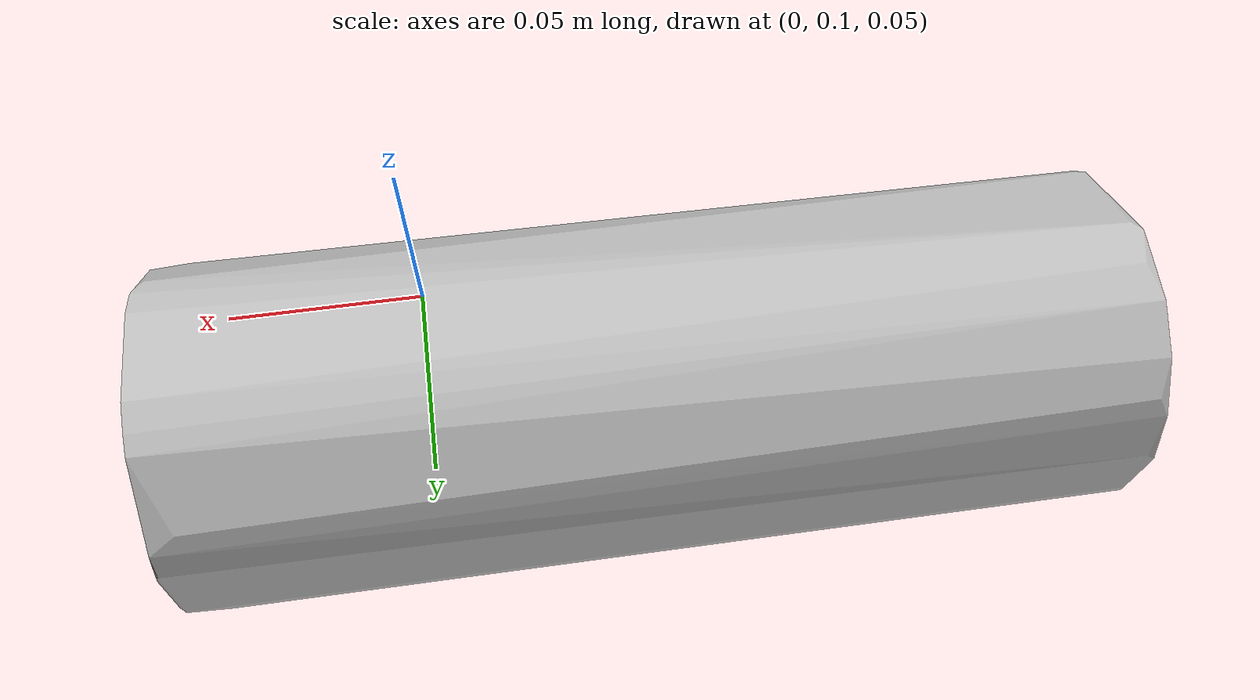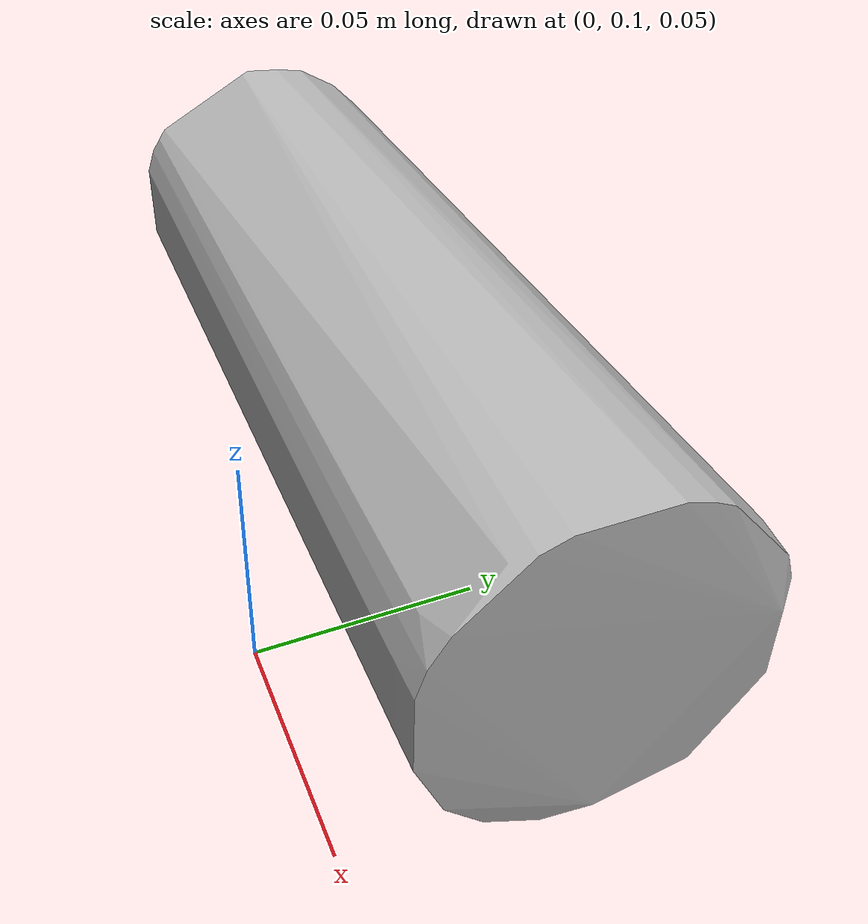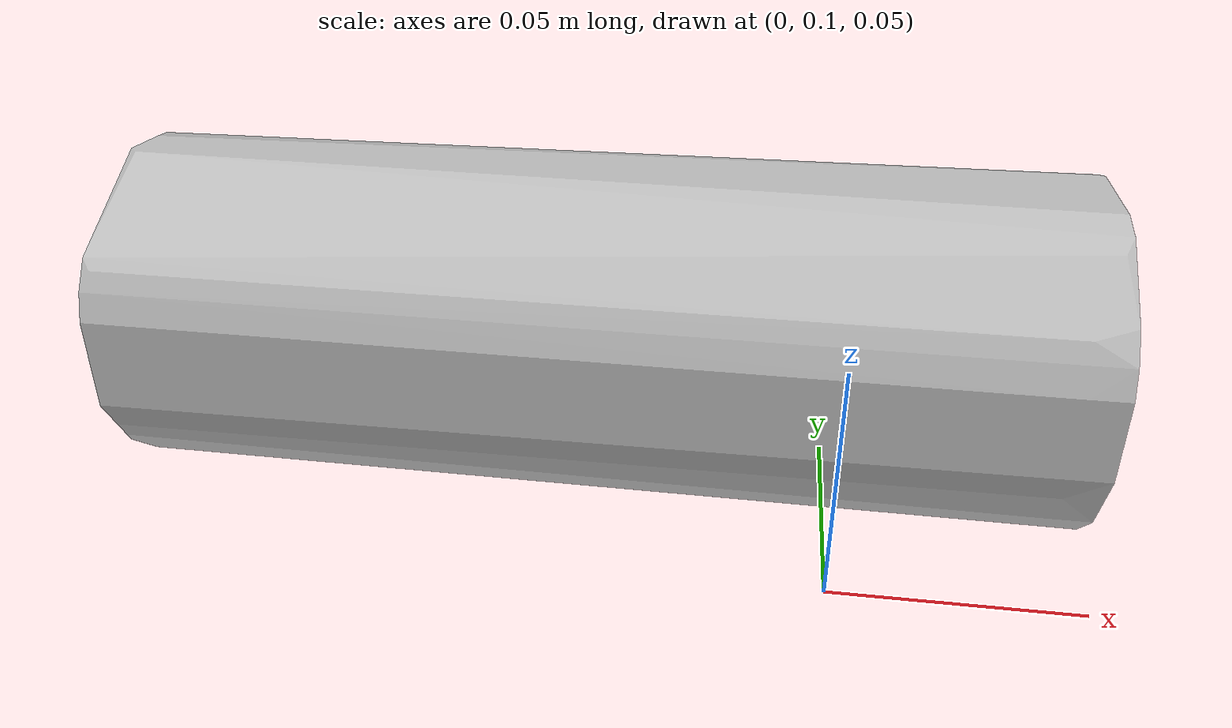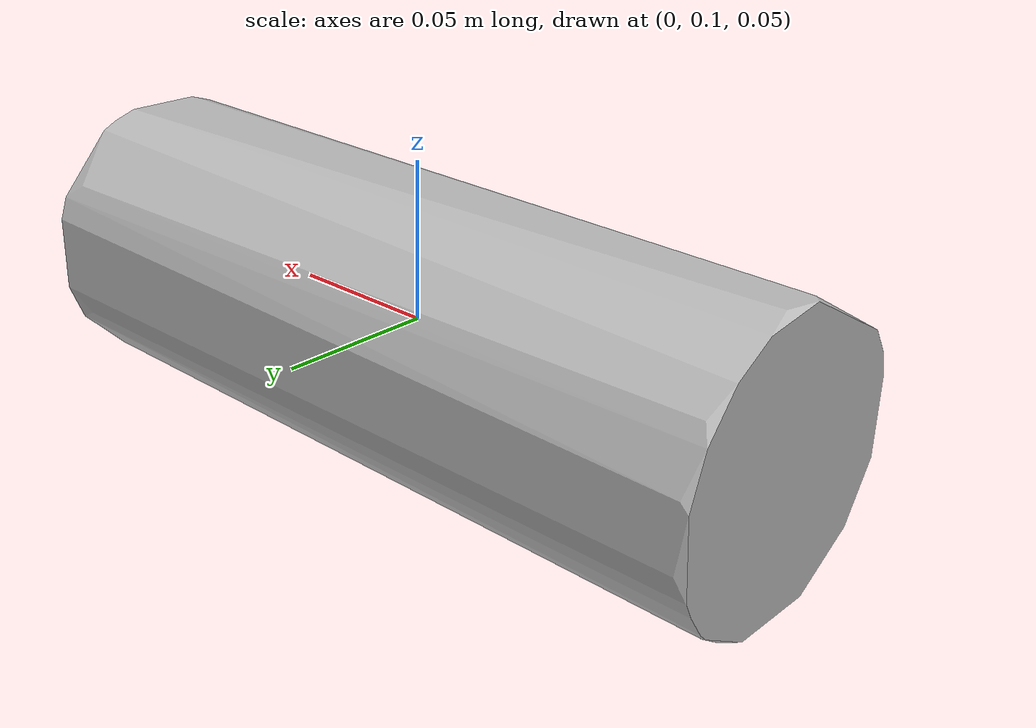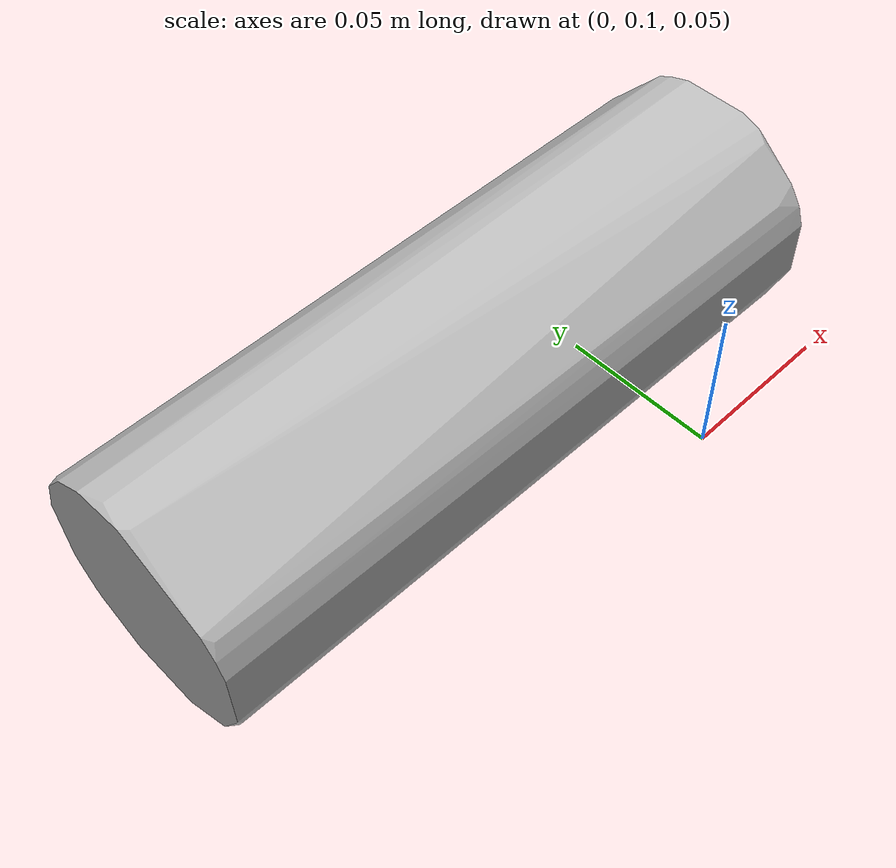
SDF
<?xml version="1.0" ?>
<sdf version="1.4">
  <world name="default">
    <model name="potato_chip_1_v1">
      <link name="link_potato_chip_1_v1">
        <collision name="default">
          <geometry>
            <mesh>
              <uri>package://models/potato_chip_1/collision.obj</uri>
              <scale>1.0 1.0 1.0</scale>
            </mesh>
          </geometry>
          <surface>
            <friction>
              <ode>
                <mu>0.5</mu>
                <mu2>0.5</mu2>
              </ode>
            </friction>
            <contact>
              <ode>
                <max_vel>0</max_vel>
                <min_depth>0.0001</min_depth>
                <kp>1e8</kp>
              </ode>
            </contact>
          </surface>
        </collision>
        <visual name="default">
          <geometry>
            <mesh>
              <uri>package://models/potato_chip_1/textured.obj</uri>
              <scale>1 1 1</scale>
            </mesh>
          </geometry>
        </visual>
        <inertial>
          <mass>0.1</mass>
          <pose>0 0 0 0 0 0</pose>
          <inertia>
            <ixx>8e-05</ixx>
            <iyy>0.0002</iyy>
            <izz>0.0002</izz>
            <ixy>0</ixy>
            <ixz>0</ixz>
            <iyz>0</iyz>
          </inertia>
        </inertial>
      </link>
      <pose>-0.05 0.15 0.08 1.55 1.57 1.55</pose>
    </model>
    <physics type="ode">
      <max_contacts>50</max_contacts>
      <ode>
        <solver>
          <type>quick</type>
          <iters>75</iters>
        </solver>
        <constraints>
          <contact_max_correcting_vel>0</contact_max_correcting_vel>
          <contact_surface_layer>0</contact_surface_layer>
        </constraints>
      </ode>
    </physics>
  </world>
</sdf>
